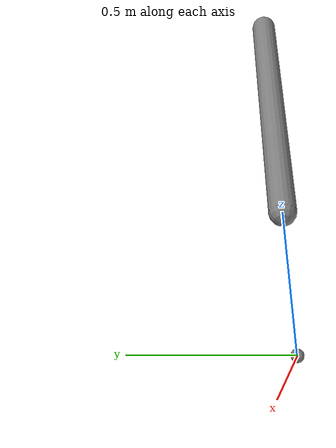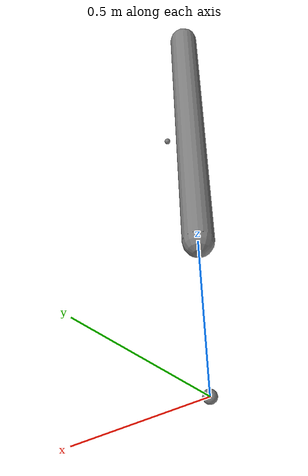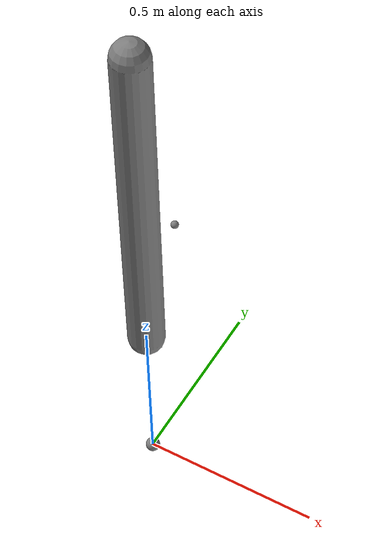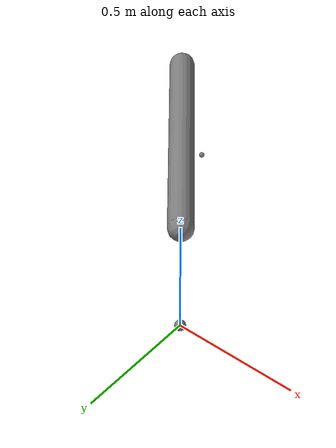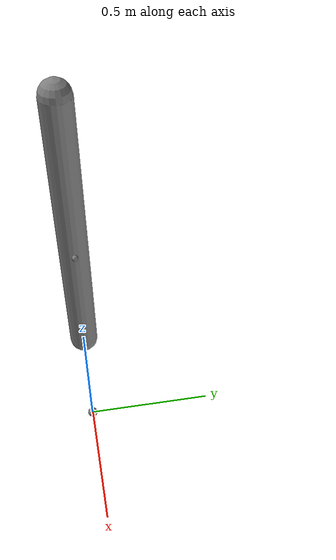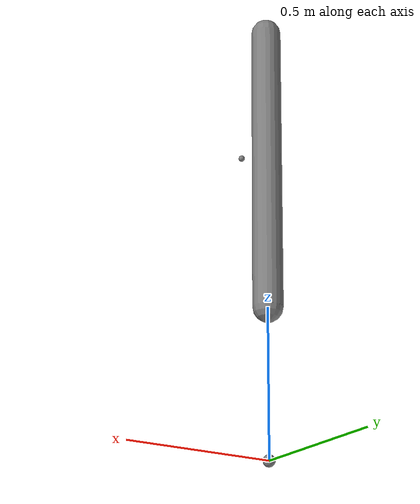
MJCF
<mujoco model="site_test">
                <worldbody>
                    <body name="arm" pos="0 0 1">
                        <joint name="j1" type="hinge" axis="0 1 0"/>
                        <inertial pos="0 0 0" mass="1.0" diaginertia="0.1 0.1 0.1"/>
                        <geom type="capsule" size="0.05 0.5"/>
                        <site name="end_effector" pos="0 0 -1" size="0.02"/>
                        <site name="sensor_mount" pos="0.1 0 0" size="0.01 0.01 0.02"/>
                    </body>
                </worldbody>
            </mujoco>
